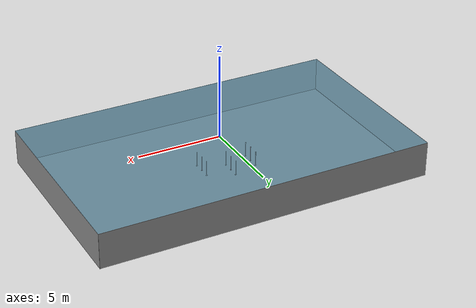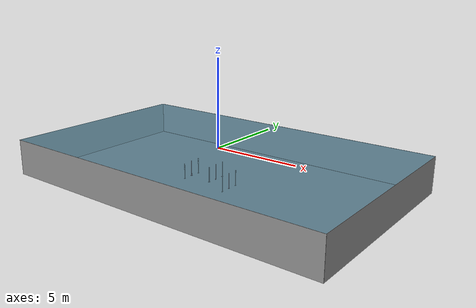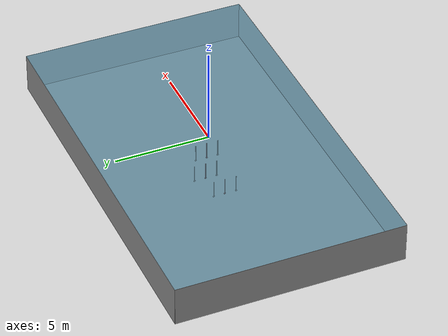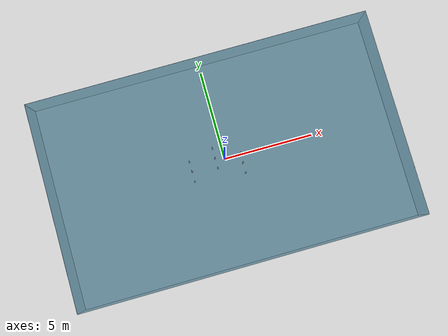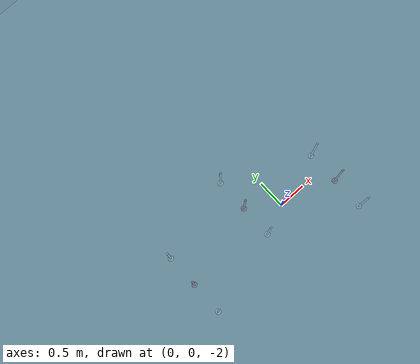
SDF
<sdf version="1.9">
 <world name="rs_task_slalom">
  <plugin filename="gz-sim-particle-emitter-system" name="gz::sim::systems::ParticleEmitter"/>
  <plugin filename="gz-sim-physics-system" name="gz::sim::systems::Physics"/>
  <plugin filename="gz-sim-user-commands-system" name="gz::sim::systems::UserCommands"/>
  <plugin filename="gz-sim-scene-broadcaster-system" name="gz::sim::systems::SceneBroadcaster"/>
  <plugin filename="gz-sim-apply-link-wrench-system" name="gz::sim::systems::ApplyLinkWrench"/>
  <plugin filename="gz-sim-imu-system" name="gz::sim::systems::Imu"/>
  <plugin filename="gz-sim-sensors-system" name="gz::sim::systems::Sensors">
   <render_engine>ogre2</render_engine>
  </plugin>
  <plugin filename="gz-sim-dvl-system" name="gz::sim::systems::DopplerVelocityLogSystem"/>
  <plugin filename="gz-sim-buoyancy-system" name="gz::sim::systems::Buoyancy">
   <graded_buoyancy>
    <default_density>1000</default_density>
    <density_change><above_depth>0</above_depth><density>1</density></density_change>
   </graded_buoyancy>
   <enable>duburi</enable>
   <enable>slalom_1</enable>
   <enable>slalom_2</enable>
   <enable>slalom_3</enable>
   <enable>payload_shot_0</enable>
   <enable>payload_shot_1</enable>
   <enable>payload_shot_2</enable>
   <enable>payload_shot_3</enable>
   <enable>payload_shot_4</enable>
   <enable>payload_shot_5</enable>
   <enable>payload_shot_6</enable>
   <enable>payload_shot_7</enable>
   <enable>payload_shot_8</enable>
   <enable>payload_shot_9</enable>
   <enable>payload_shot_10</enable>
   <enable>payload_shot_11</enable>
  </plugin>
  <physics name="default" type="dart">
   <max_step_size>0.001</max_step_size>
   <real_time_factor>1.0</real_time_factor>
   <real_time_update_rate>1000</real_time_update_rate>
   <dart>
    <collision_detector>bullet</collision_detector>
    <solver><solver_type>dantzig</solver_type></solver>
   </dart>
  </physics>
  <gravity>0 0 -9.81</gravity>
  <magnetic_field>3.9e-05 1.1e-06 2.6e-05</magnetic_field>
  <atmosphere type="adiabatic"/>
  <scene>
   <ambient>0.28 0.4 0.48 1</ambient>
   <background>0.08 0.26 0.4 1</background>
   <shadows>true</shadows>
   <fog>
    <color>0.14 0.34 0.42 1</color>
    <type>linear</type>
    <start>1.2</start>
    <end>22.0</end>
    <density>0.028</density>
   </fog>
  </scene>
  <light type="directional" name="sun">
   <pose>0 0 10 0 0 0</pose>
   <diffuse>0.48 0.52 0.56 1</diffuse>
   <specular>0.10 0.10 0.11 1</specular>
   <direction>-0.4 0.15 -0.9</direction>
  </light>
  <light type="directional" name="fill">
   <cast_shadows>false</cast_shadows>
   <pose>0 0 5 0 0 0</pose>
   <diffuse>0.22 0.28 0.34 1</diffuse>
   <specular>0.04 0.05 0.06 1</specular>
   <direction>0.3 -0.2 -1</direction>
  </light>
  <light type="directional" name="caustic_fill">
   <cast_shadows>false</cast_shadows>
   <pose>0 0 3 0 0 0</pose>
   <diffuse>0.12 0.22 0.26 1</diffuse>
   <specular>0.02 0.03 0.04 1</specular>
   <direction>0.1 0.35 -0.85</direction>
  </light>
  <model name="robosub_pool">
   <static>true</static>
   <link name="floor">
    <pose>0 0 -2.1 0 0 0</pose>
    <inertial>
     <mass>1000</mass>
     <inertia><ixx>1000</ixx><ixy>0</ixy><ixz>0</ixz><iyy>1000</iyy><iyz>0</iyz><izz>1000</izz></inertia>
    </inertial>
    <visual name="floor_visual">
     <pose>0 0 0.005 0 0 0</pose>
     <geometry><box><size>20 12 0.01</size></box></geometry>
     <material>
      <ambient>0.55 0.55 0.55 1</ambient>
      <diffuse>0.55 0.55 0.55 1</diffuse>
      <specular>0.08 0.08 0.08 1</specular>
      <emissive>0 0 0 1</emissive>
      <pbr>
       <metal>
        <albedo_map>model://robosub_textures/pool_floor.png</albedo_map>
        <metalness>0.0</metalness>
        <roughness>0.85</roughness>
       </metal>
      </pbr>
     </material>
    </visual>
    <collision name="floor_collision">
     <pose>0 0 -0.05 0 0 0</pose>
     <geometry><box><size>20 12 0.1</size></box></geometry>
    </collision>
   </link>
   <link name="wall_x_pos">
    <inertial>
     <mass>1000</mass>
     <inertia><ixx>1000</ixx><ixy>0</ixy><ixz>0</ixz><iyy>1000</iyy><iyz>0</iyz><izz>1000</izz></inertia>
    </inertial>
    <visual name="wall_x_pos_visual">
     <pose>10 0 -1.05 0 0 0</pose>
     <geometry><box><size>0.01 12 2.1</size></box></geometry>
     <material>
      <ambient>0.55 0.55 0.55 1</ambient>
      <diffuse>0.55 0.55 0.55 1</diffuse>
      <specular>0.08 0.08 0.08 1</specular>
      <emissive>0 0 0 1</emissive>
      <pbr>
       <metal>
        <albedo_map>model://robosub_textures/pool_wall_long.png</albedo_map>
        <metalness>0.0</metalness>
        <roughness>0.85</roughness>
       </metal>
      </pbr>
     </material>
    </visual>
    <collision name="wall_x_pos_collision">
     <pose>10.105 0 -1.05 0 0 0</pose>
     <geometry><box><size>0.2 12.4 2.1</size></box></geometry>
    </collision>
   </link>
   <link name="wall_x_neg">
    <inertial>
     <mass>1000</mass>
     <inertia><ixx>1000</ixx><ixy>0</ixy><ixz>0</ixz><iyy>1000</iyy><iyz>0</iyz><izz>1000</izz></inertia>
    </inertial>
    <visual name="wall_x_neg_visual">
     <pose>-10 0 -1.05 0 0 0</pose>
     <geometry><box><size>0.01 12 2.1</size></box></geometry>
     <material>
      <ambient>0.55 0.55 0.55 1</ambient>
      <diffuse>0.55 0.55 0.55 1</diffuse>
      <specular>0.08 0.08 0.08 1</specular>
      <emissive>0 0 0 1</emissive>
      <pbr>
       <metal>
        <albedo_map>model://robosub_textures/pool_wall_long.png</albedo_map>
        <metalness>0.0</metalness>
        <roughness>0.85</roughness>
       </metal>
      </pbr>
     </material>
    </visual>
    <collision name="wall_x_neg_collision">
     <pose>-10.105 0 -1.05 0 0 0</pose>
     <geometry><box><size>0.2 12.4 2.1</size></box></geometry>
    </collision>
   </link>
   <link name="wall_y_pos">
    <inertial>
     <mass>1000</mass>
     <inertia><ixx>1000</ixx><ixy>0</ixy><ixz>0</ixz><iyy>1000</iyy><iyz>0</iyz><izz>1000</izz></inertia>
    </inertial>
    <visual name="wall_y_pos_visual">
     <pose>0 6 -1.05 0 0 0</pose>
     <geometry><box><size>20 0.01 2.1</size></box></geometry>
     <material>
      <ambient>0.55 0.55 0.55 1</ambient>
      <diffuse>0.55 0.55 0.55 1</diffuse>
      <specular>0.08 0.08 0.08 1</specular>
      <emissive>0 0 0 1</emissive>
      <pbr>
       <metal>
        <albedo_map>model://robosub_textures/pool_wall_short.png</albedo_map>
        <metalness>0.0</metalness>
        <roughness>0.85</roughness>
       </metal>
      </pbr>
     </material>
    </visual>
    <collision name="wall_y_pos_collision">
     <pose>0 6.105 -1.05 0 0 0</pose>
     <geometry><box><size>20 0.2 2.1</size></box></geometry>
    </collision>
   </link>
   <link name="wall_y_neg">
    <inertial>
     <mass>1000</mass>
     <inertia><ixx>1000</ixx><ixy>0</ixy><ixz>0</ixz><iyy>1000</iyy><iyz>0</iyz><izz>1000</izz></inertia>
    </inertial>
    <visual name="wall_y_neg_visual">
     <pose>0 -6 -1.05 0 0 0</pose>
     <geometry><box><size>20 0.01 2.1</size></box></geometry>
     <material>
      <ambient>0.55 0.55 0.55 1</ambient>
      <diffuse>0.55 0.55 0.55 1</diffuse>
      <specular>0.08 0.08 0.08 1</specular>
      <emissive>0 0 0 1</emissive>
      <pbr>
       <metal>
        <albedo_map>model://robosub_textures/pool_wall_short.png</albedo_map>
        <metalness>0.0</metalness>
        <roughness>0.85</roughness>
       </metal>
      </pbr>
     </material>
    </visual>
    <collision name="wall_y_neg_collision">
     <pose>0 -6.105 -1.05 0 0 0</pose>
     <geometry><box><size>20 0.2 2.1</size></box></geometry>
    </collision>
   </link>
   <link name="water_surface">
    <inertial>
     <mass>1</mass>
     <inertia><ixx>1</ixx><ixy>0</ixy><ixz>0</ixz><iyy>1</iyy><iyz>0</iyz><izz>1</izz></inertia>
    </inertial>
    <visual name="water_surface_visual">
     <cast_shadows>false</cast_shadows>
     <transparency>0.18</transparency>
     <geometry><mesh><uri>model://robosub_meshes/meshes/water_robosub.obj</uri></mesh></geometry>
     <material>
      <ambient>0.42 0.6 0.68 1</ambient>
      <diffuse>0.42 0.6 0.68 1</diffuse>
      <specular>0.35 0.35 0.35 1</specular>
      <emissive>0.1 0.1 0.1 1</emissive>
      <pbr>
       <metal>
        <albedo_map>model://robosub_textures/water_surface.png</albedo_map>
        <metalness>0.0</metalness>
        <roughness>0.15</roughness>
       </metal>
      </pbr>
     </material>
    </visual>
   </link>
  </model>
  <model name="marine_snow">
   <static>true</static>
   <pose>0 0 -1.05 0 0 0</pose>
   <link name="link">
    <particle_emitter name="snow" type="box">
     <emitting>true</emitting>
     <size>12 12 2.1</size>
     <particle_size>0.006 0.006 0.006</particle_size>
     <lifetime>30</lifetime>
     <min_velocity>0.004</min_velocity>
     <max_velocity>0.025</max_velocity>
     <scale_rate>0</scale_rate>
     <rate>900</rate>
     <topic>marine_snow</topic>
     <material>
      <diffuse>0.80 0.84 0.80</diffuse>
      <specular>0.05 0.05 0.05</specular>
      <pbr><metal><albedo_map>model://robosub_textures/marine_snow.png</albedo_map></metal></pbr>
     </material>
    </particle_emitter>
   </link>
  </model>
  <include><uri>model://robosub_slalom</uri><name>slalom_1</name><pose>-2 0 -2.1 0 0 0</pose></include>
  <include><uri>model://robosub_slalom</uri><name>slalom_2</name><pose>-0.5 0.4 -2.1 0 0 0</pose></include>
  <include><uri>model://robosub_slalom</uri><name>slalom_3</name><pose>1 -0.3 -2.1 0 0 0</pose></include>
 </world>
</sdf>

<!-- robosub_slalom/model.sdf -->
<sdf version="1.9">
  <model name="robosub_slalom">
    <static>false</static>
    <plugin filename="gz-sim-label-system" name="gz::sim::systems::Label">
      <label>13</label>
    </plugin>
    <link name="pipe_left">
      <pose>0 0.6 0.462 0 0 0</pose>
      <inertial>
        <pose>0 0 0 0 0 0</pose>
        <mass>0.35</mass>
        <inertia>
          <ixx>0.0236494</ixx><ixy>0</ixy><ixz>0</ixz>
          <iyy>0.0236494</iyy><iyz>0</iyz>
          <izz>4.88057e-05</izz>
        </inertia>
      </inertial>
      <visual name="pipe_left_visual">
        <pose>0 0 0 0 0 0</pose>
        <geometry><cylinder><radius>0.0167</radius><length>0.9</length></cylinder></geometry>
        <material>
          <ambient>0.9 0.9 0.9 1</ambient>
          <diffuse>0.9 0.9 0.9 1</diffuse>
          <specular>0.55 0.55 0.55 1</specular>
          <emissive>0.252 0.252 0.252 1</emissive>
          <pbr>
            <metal>
              <albedo_map>model://robosub_textures/albedo_pvc.png</albedo_map>
              <metalness>0.0</metalness>
              <roughness_map>model://robosub_textures/rough_pvc.png</roughness_map>
              <normal_map>model://robosub_textures/norm_pvc.png</normal_map>
            </metal>
          </pbr>
        </material>
      </visual>
      <collision name="pipe_left_collision">
        <pose>0 0 0 0 0 0</pose>
        <geometry><cylinder><radius>0.0167</radius><length>0.9</length></cylinder></geometry>
      </collision>
    </link>
    <link name="pipe_left_anchor">
      <pose>0 0.6 0.006 0 0 0</pose>
      <inertial>
        <pose>0 0 0 0 0 0</pose>
        <mass>0.9</mass>
        <inertia>
          <ixx>0.0005733</ixx><ixy>0</ixy><ixz>0</ixz>
          <iyy>0.0005733</iyy><iyz>0</iyz>
          <izz>0.001125</izz>
        </inertia>
      </inertial>
      <visual name="pipe_left_anchor_visual">
        <pose>0 0 0 0 0 0</pose>
        <geometry><cylinder><radius>0.05</radius><length>0.012</length></cylinder></geometry>
        <material>
          <ambient>0.9 0.9 0.9 1</ambient>
          <diffuse>0.9 0.9 0.9 1</diffuse>
          <specular>0.55 0.55 0.55 1</specular>
          <emissive>0.252 0.252 0.252 1</emissive>
          <pbr>
            <metal>
              <albedo_map>model://robosub_textures/albedo_pvc.png</albedo_map>
              <metalness>0.0</metalness>
              <roughness_map>model://robosub_textures/rough_pvc.png</roughness_map>
              <normal_map>model://robosub_textures/norm_pvc.png</normal_map>
            </metal>
          </pbr>
        </material>
      </visual>
      <collision name="pipe_left_anchor_collision">
        <pose>0 0 0 0 0 0</pose>
        <geometry><cylinder><radius>0.05</radius><length>0.012</length></cylinder></geometry>
        <surface>
          <friction>
            <ode><mu>0.8</mu><mu2>0.8</mu2></ode>
            <bullet><friction>0.8</friction><friction2>0.8</friction2></bullet>
          </friction>
        </surface>
      </collision>
    </link>
    <link name="pipe_centre">
      <pose>0 0 0.462 0 0 0</pose>
      <inertial>
        <pose>0 0 0 0 0 0</pose>
        <mass>0.35</mass>
        <inertia>
          <ixx>0.0236494</ixx><ixy>0</ixy><ixz>0</ixz>
          <iyy>0.0236494</iyy><iyz>0</iyz>
          <izz>4.88057e-05</izz>
        </inertia>
      </inertial>
      <visual name="pipe_centre_visual">
        <pose>0 0 0 0 0 0</pose>
        <geometry><cylinder><radius>0.0167</radius><length>0.9</length></cylinder></geometry>
        <material>
          <ambient>0.72 0.11 0.13 1</ambient>
          <diffuse>0.72 0.11 0.13 1</diffuse>
          <specular>0.55 0.55 0.55 1</specular>
          <emissive>0.202 0.0308 0.0364 1</emissive>
          <pbr>
            <metal>
              <albedo_map>model://robosub_textures/albedo_pvc.png</albedo_map>
              <metalness>0.0</metalness>
              <roughness_map>model://robosub_textures/rough_pvc.png</roughness_map>
              <normal_map>model://robosub_textures/norm_pvc.png</normal_map>
            </metal>
          </pbr>
        </material>
      </visual>
      <collision name="pipe_centre_collision">
        <pose>0 0 0 0 0 0</pose>
        <geometry><cylinder><radius>0.0167</radius><length>0.9</length></cylinder></geometry>
      </collision>
    </link>
    <link name="pipe_centre_anchor">
      <pose>0 0 0.006 0 0 0</pose>
      <inertial>
        <pose>0 0 0 0 0 0</pose>
        <mass>0.9</mass>
        <inertia>
          <ixx>0.0005733</ixx><ixy>0</ixy><ixz>0</ixz>
          <iyy>0.0005733</iyy><iyz>0</iyz>
          <izz>0.001125</izz>
        </inertia>
      </inertial>
      <visual name="pipe_centre_anchor_visual">
        <pose>0 0 0 0 0 0</pose>
        <geometry><cylinder><radius>0.05</radius><length>0.012</length></cylinder></geometry>
        <material>
          <ambient>0.72 0.11 0.13 1</ambient>
          <diffuse>0.72 0.11 0.13 1</diffuse>
          <specular>0.55 0.55 0.55 1</specular>
          <emissive>0.202 0.0308 0.0364 1</emissive>
          <pbr>
            <metal>
              <albedo_map>model://robosub_textures/albedo_pvc.png</albedo_map>
              <metalness>0.0</metalness>
              <roughness_map>model://robosub_textures/rough_pvc.png</roughness_map>
              <normal_map>model://robosub_textures/norm_pvc.png</normal_map>
            </metal>
          </pbr>
        </material>
      </visual>
      <collision name="pipe_centre_anchor_collision">
        <pose>0 0 0 0 0 0</pose>
        <geometry><cylinder><radius>0.05</radius><length>0.012</length></cylinder></geometry>
        <surface>
          <friction>
            <ode><mu>0.8</mu><mu2>0.8</mu2></ode>
            <bullet><friction>0.8</friction><friction2>0.8</friction2></bullet>
          </friction>
        </surface>
      </collision>
    </link>
    <link name="pipe_right">
      <pose>0 -0.6 0.462 0 0 0</pose>
      <inertial>
        <pose>0 0 0 0 0 0</pose>
        <mass>0.35</mass>
        <inertia>
          <ixx>0.0236494</ixx><ixy>0</ixy><ixz>0</ixz>
          <iyy>0.0236494</iyy><iyz>0</iyz>
          <izz>4.88057e-05</izz>
        </inertia>
      </inertial>
      <visual name="pipe_right_visual">
        <pose>0 0 0 0 0 0</pose>
        <geometry><cylinder><radius>0.0167</radius><length>0.9</length></cylinder></geometry>
        <material>
          <ambient>0.9 0.9 0.9 1</ambient>
          <diffuse>0.9 0.9 0.9 1</diffuse>
          <specular>0.55 0.55 0.55 1</specular>
          <emissive>0.252 0.252 0.252 1</emissive>
          <pbr>
            <metal>
              <albedo_map>model://robosub_textures/albedo_pvc.png</albedo_map>
              <metalness>0.0</metalness>
              <roughness_map>model://robosub_textures/rough_pvc.png</roughness_map>
              <normal_map>model://robosub_textures/norm_pvc.png</normal_map>
            </metal>
          </pbr>
        </material>
      </visual>
      <collision name="pipe_right_collision">
        <pose>0 0 0 0 0 0</pose>
        <geometry><cylinder><radius>0.0167</radius><length>0.9</length></cylinder></geometry>
      </collision>
    </link>
    <link name="pipe_right_anchor">
      <pose>0 -0.6 0.006 0 0 0</pose>
      <inertial>
        <pose>0 0 0 0 0 0</pose>
        <mass>0.9</mass>
        <inertia>
          <ixx>0.0005733</ixx><ixy>0</ixy><ixz>0</ixz>
          <iyy>0.0005733</iyy><iyz>0</iyz>
          <izz>0.001125</izz>
        </inertia>
      </inertial>
      <visual name="pipe_right_anchor_visual">
        <pose>0 0 0 0 0 0</pose>
        <geometry><cylinder><radius>0.05</radius><length>0.012</length></cylinder></geometry>
        <material>
          <ambient>0.9 0.9 0.9 1</ambient>
          <diffuse>0.9 0.9 0.9 1</diffuse>
          <specular>0.55 0.55 0.55 1</specular>
          <emissive>0.252 0.252 0.252 1</emissive>
          <pbr>
            <metal>
              <albedo_map>model://robosub_textures/albedo_pvc.png</albedo_map>
              <metalness>0.0</metalness>
              <roughness_map>model://robosub_textures/rough_pvc.png</roughness_map>
              <normal_map>model://robosub_textures/norm_pvc.png</normal_map>
            </metal>
          </pbr>
        </material>
      </visual>
      <collision name="pipe_right_anchor_collision">
        <pose>0 0 0 0 0 0</pose>
        <geometry><cylinder><radius>0.05</radius><length>0.012</length></cylinder></geometry>
        <surface>
          <friction>
            <ode><mu>0.8</mu><mu2>0.8</mu2></ode>
            <bullet><friction>0.8</friction><friction2>0.8</friction2></bullet>
          </friction>
        </surface>
      </collision>
    </link>
    <joint name="pipe_left_mooring" type="fixed">
      <parent>world</parent>
      <child>pipe_left_anchor</child>
    </joint>
    <joint name="pipe_left_hinge" type="universal">
      <parent>pipe_left_anchor</parent>
      <child>pipe_left</child>
      <pose>0 0 -0.45 0 0 0</pose>
      <axis>
        <xyz>1 0 0</xyz>
        <limit>
          <lower>-1.2</lower>
          <upper>1.2</upper>
        </limit>
        <dynamics>
          <damping>0.05</damping>
          <spring_stiffness>0</spring_stiffness>
          <spring_reference>0</spring_reference>
        </dynamics>
      </axis>
      <axis2>
        <xyz>0 1 0</xyz>
        <limit>
          <lower>-1.2</lower>
          <upper>1.2</upper>
        </limit>
        <dynamics>
          <damping>0.05</damping>
          <spring_stiffness>0</spring_stiffness>
          <spring_reference>0</spring_reference>
        </dynamics>
      </axis2>
    </joint>
    <joint name="pipe_centre_mooring" type="fixed">
      <parent>world</parent>
      <child>pipe_centre_anchor</child>
    </joint>
    <joint name="pipe_centre_hinge" type="universal">
      <parent>pipe_centre_anchor</parent>
      <child>pipe_centre</child>
      <pose>0 0 -0.45 0 0 0</pose>
      <axis>
        <xyz>1 0 0</xyz>
        <limit>
          <lower>-1.2</lower>
          <upper>1.2</upper>
        </limit>
        <dynamics>
          <damping>0.05</damping>
          <spring_stiffness>0</spring_stiffness>
          <spring_reference>0</spring_reference>
        </dynamics>
      </axis>
      <axis2>
        <xyz>0 1 0</xyz>
        <limit>
          <lower>-1.2</lower>
          <upper>1.2</upper>
        </limit>
        <dynamics>
          <damping>0.05</damping>
          <spring_stiffness>0</spring_stiffness>
          <spring_reference>0</spring_reference>
        </dynamics>
      </axis2>
    </joint>
    <joint name="pipe_right_mooring" type="fixed">
      <parent>world</parent>
      <child>pipe_right_anchor</child>
    </joint>
    <joint name="pipe_right_hinge" type="universal">
      <parent>pipe_right_anchor</parent>
      <child>pipe_right</child>
      <pose>0 0 -0.45 0 0 0</pose>
      <axis>
        <xyz>1 0 0</xyz>
        <limit>
          <lower>-1.2</lower>
          <upper>1.2</upper>
        </limit>
        <dynamics>
          <damping>0.05</damping>
          <spring_stiffness>0</spring_stiffness>
          <spring_reference>0</spring_reference>
        </dynamics>
      </axis>
      <axis2>
        <xyz>0 1 0</xyz>
        <limit>
          <lower>-1.2</lower>
          <upper>1.2</upper>
        </limit>
        <dynamics>
          <damping>0.05</damping>
          <spring_stiffness>0</spring_stiffness>
          <spring_reference>0</spring_reference>
        </dynamics>
      </axis2>
    </joint>
    <plugin filename="gz-sim-hydrodynamics-system" name="gz::sim::systems::Hydrodynamics">
      <link_name>pipe_left</link_name>
      <water_density>1000.0</water_density>
      <xUabsU>-15.03</xUabsU>
      <yVabsV>-15.03</yVabsV>
      <zWabsW>-0.438079</zWabsW>
      <kPabsP>-2.73922</kPabsP>
      <mQabsQ>-2.73922</mQabsQ>
      <nRabsR>-2.73922</nRabsR>
    </plugin>
    <plugin filename="gz-sim-hydrodynamics-system" name="gz::sim::systems::Hydrodynamics">
      <link_name>pipe_centre</link_name>
      <water_density>1000.0</water_density>
      <xUabsU>-15.03</xUabsU>
      <yVabsV>-15.03</yVabsV>
      <zWabsW>-0.438079</zWabsW>
      <kPabsP>-2.73922</kPabsP>
      <mQabsQ>-2.73922</mQabsQ>
      <nRabsR>-2.73922</nRabsR>
    </plugin>
    <plugin filename="gz-sim-hydrodynamics-system" name="gz::sim::systems::Hydrodynamics">
      <link_name>pipe_right</link_name>
      <water_density>1000.0</water_density>
      <xUabsU>-15.03</xUabsU>
      <yVabsV>-15.03</yVabsV>
      <zWabsW>-0.438079</zWabsW>
      <kPabsP>-2.73922</kPabsP>
      <mQabsQ>-2.73922</mQabsQ>
      <nRabsR>-2.73922</nRabsR>
    </plugin>
  </model>
</sdf>
